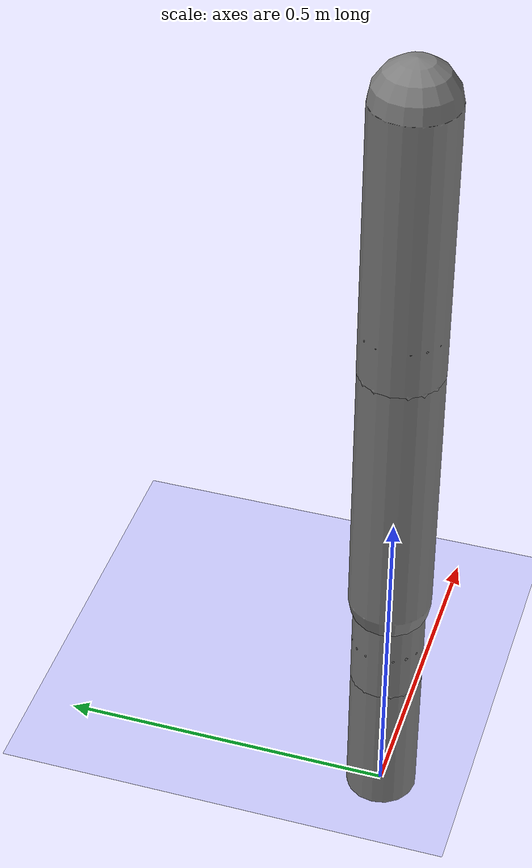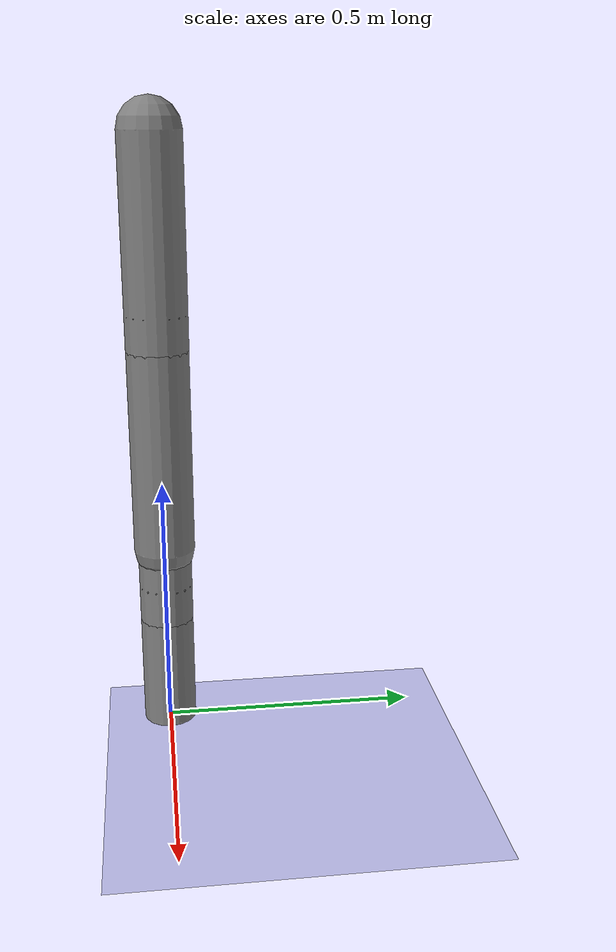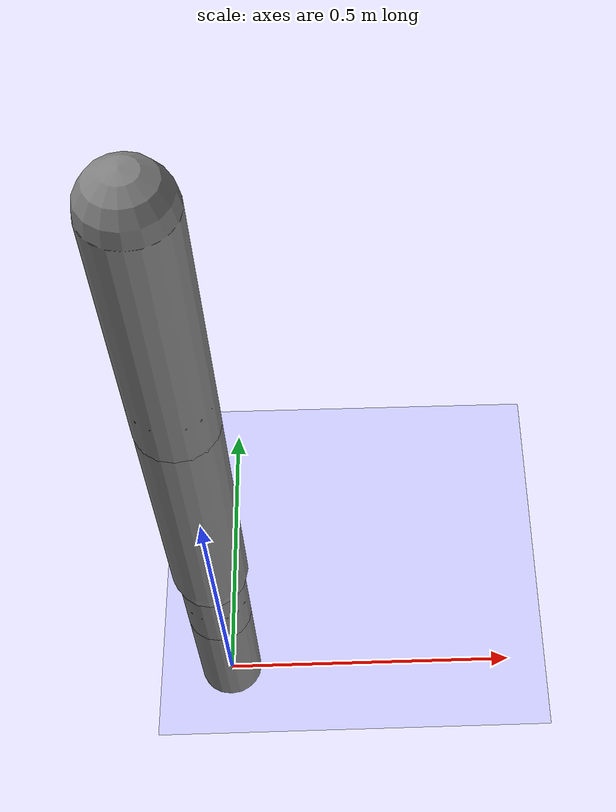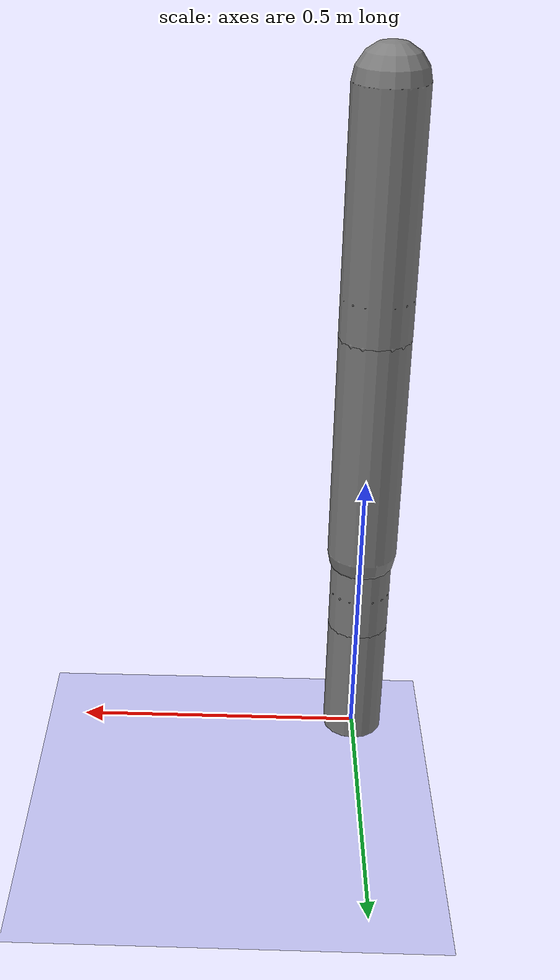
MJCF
<?xml version='1.0' encoding='UTF-8'?>
<mujoco model="robot_model">
  <worldbody>
    <light name="light" pos="0 -3 10" dir="0 0.5 -1" diffuse=".8 .8 .8" specular="0.1 0.1 0.1"/>
    <geom name="floor" type="plane" size="10.0 10.0 0.1" pos="0 0 0" rgba="0.8 0.8 1 1"/>
    <body name="limb0" pos="0 0 0">
      <geom type="capsule" fromto="0 0 0 0 0 0.2902629649113912" size="0.05227636530917177" density="762.8191112167481"/>
      <site type="sphere" size="0.01" name="limb0_site0" pos="0 0 0.2194209913894763"/>
      <site type="sphere" size="0.01" name="limb0_site1" pos="0 0 0.01890214016312704"/>
      <freejoint name="limb0_root"/>
      <body name="limb1" pos="0 0 0.2194209913894763">
        <geom type="capsule" fromto="0 0 0 0 0 0.38072568409287194" size="0.05235479288704626" density="611.9011534576443"/>
        <site type="sphere" size="0.01" name="limb1_site0" pos="0 0 0.15171097772554798"/>
        <body name="limb2" pos="0 0 0.15171097772554798">
          <geom type="capsule" fromto="0 0 0 0 0 0.10581665254440775" size="0.05348785395614184" density="974.5770120745345"/>
          <site type="sphere" size="0.01" name="limb2_site0" pos="0 0 0.09083760987558298"/>
          <body name="limb3" pos="0 0 0.09083760987558298">
            <geom type="capsule" fromto="0 0 0 0 0 0.3246346816300574" size="0.027985800535247497" density="877.8764988614424"/>
            <site type="sphere" size="0.01" name="limb3_site0" pos="0 0 0.30592291138675143"/>
            <body name="limb4" pos="0 0 0.30592291138675143">
              <geom type="capsule" fromto="0 0 0 0 0 0.4001493202699409" size="0.06" density="1138.7841089491567"/>
              <joint name="joint_limb3_limb4_0" type="hinge" axis="0 0 1" range="-32.23675465955068 32.23675465955068" damping="5.0"/>
            </body>
            <joint name="joint_limb2_limb3_0" type="hinge" axis="1 0 0" range="-102.98912811609488 102.98912811609488" damping="5.0"/>
          </body>
          <joint name="joint_limb1_limb2_0" type="hinge" axis="1 0 0" range="-42.57355142917054 42.57355142917054" damping="5.0"/>
        </body>
        <joint name="joint_limb0_limb1_0" type="hinge" axis="0 1 0" range="-120.0 120.0" damping="5.0"/>
      </body>
      <body name="limb5" pos="0 0 0.01890214016312704">
        <geom type="capsule" fromto="0 0 0 0 0 0.21907263952867523" size="0.0482409169529308" density="629.8797131388537"/>
        <site type="sphere" size="0.01" name="limb5_site0" pos="0 0 0.040017703619327896"/>
        <site type="sphere" size="0.01" name="limb5_site1" pos="0 0 0.16086566959814075"/>
        <body name="limb6" pos="0 0 0.040017703619327896">
          <geom type="capsule" fromto="0 0 0 0 0 0.49506834786402915" size="0.03678532303791788" density="732.350866634508"/>
          <site type="sphere" size="0.01" name="limb6_site0" pos="0 0 0.48864896668293684"/>
          <body name="limb7" pos="0 0 0.48864896668293684">
            <geom type="capsule" fromto="0 0 0 0 0 0.17987090326120395" size="0.045840603195653064" density="427.52554854241964"/>
            <site type="sphere" size="0.01" name="limb7_site0" pos="0 0 0.12808196608944794"/>
            <body name="limb8" pos="0 0 0.12808196608944794">
              <geom type="capsule" fromto="0 0 0 0 0 0.20341471850922796" size="0.027365808771741513" density="1068.3725583502405"/>
              <joint name="joint_limb7_limb8_0" type="hinge" axis="0 0 1" range="-104.59573439320407 104.59573439320407" damping="5.0"/>
            </body>
            <joint name="joint_limb6_limb7_0" type="hinge" axis="0 1 0" range="-101.73901430779064 101.73901430779064" damping="5.0"/>
          </body>
          <joint name="joint_limb5_limb6_0" type="hinge" axis="0 0 1" range="-98.208106043741 98.208106043741" damping="5.0"/>
        </body>
        <body name="limb9" pos="0 0 0.16086566959814075">
          <geom type="capsule" fromto="0 0 0 0 0 0.23103065752325797" size="0.04901004816607724" density="644.8409758258897"/>
          <site type="sphere" size="0.01" name="limb9_site0" pos="0 0 0.18815467307351175"/>
          <body name="limb10" pos="0 0 0.18815467307351175">
            <geom type="capsule" fromto="0 0 0 0 0 0.4676759956951593" size="0.05966738873335552" density="631.8729198528299"/>
            <joint name="joint_limb9_limb10_0" type="hinge" axis="1 0 0" range="-116.11182435512906 116.11182435512906" damping="5.0"/>
          </body>
          <joint name="joint_limb5_limb9_0" type="hinge" axis="1 0 0" range="-52.24607575631726 52.24607575631726" damping="5.0"/>
        </body>
        <joint name="joint_limb0_limb5_0" type="hinge" axis="0 0 1" range="-96.21716630603876 96.21716630603876" damping="5.0"/>
      </body>
    </body>
  </worldbody>
  <actuator>
    <position name="position_actuator_joint_limb0_limb1_0" joint="joint_limb0_limb1_0" gear="1.082446808110992" inheritrange="1" kp="10.0"/>
    <position name="position_actuator_joint_limb1_limb2_0" joint="joint_limb1_limb2_0" gear="1.7759261162861084" inheritrange="1" kp="10.0"/>
    <position name="position_actuator_joint_limb2_limb3_0" joint="joint_limb2_limb3_0" gear="1.285844846340357" inheritrange="1" kp="10.0"/>
    <position name="position_actuator_joint_limb3_limb4_0" joint="joint_limb3_limb4_0" gear="0.6866428973515241" inheritrange="1" kp="10.0"/>
    <position name="position_actuator_joint_limb0_limb5_0" joint="joint_limb0_limb5_0" gear="1.7817465554683207" inheritrange="1" kp="10.0"/>
    <position name="position_actuator_joint_limb5_limb6_0" joint="joint_limb5_limb6_0" gear="0.9075785035297382" inheritrange="1" kp="10.0"/>
    <position name="position_actuator_joint_limb6_limb7_0" joint="joint_limb6_limb7_0" gear="0.6855578824392156" inheritrange="1" kp="10.0"/>
    <position name="position_actuator_joint_limb7_limb8_0" joint="joint_limb7_limb8_0" gear="0.7049780118299882" inheritrange="1" kp="10.0"/>
    <position name="position_actuator_joint_limb5_limb9_0" joint="joint_limb5_limb9_0" gear="0.732217334990693" inheritrange="1" kp="10.0"/>
    <position name="position_actuator_joint_limb9_limb10_0" joint="joint_limb9_limb10_0" gear="1.6176498600222116" inheritrange="1" kp="10.0"/>
  </actuator>
</mujoco>
